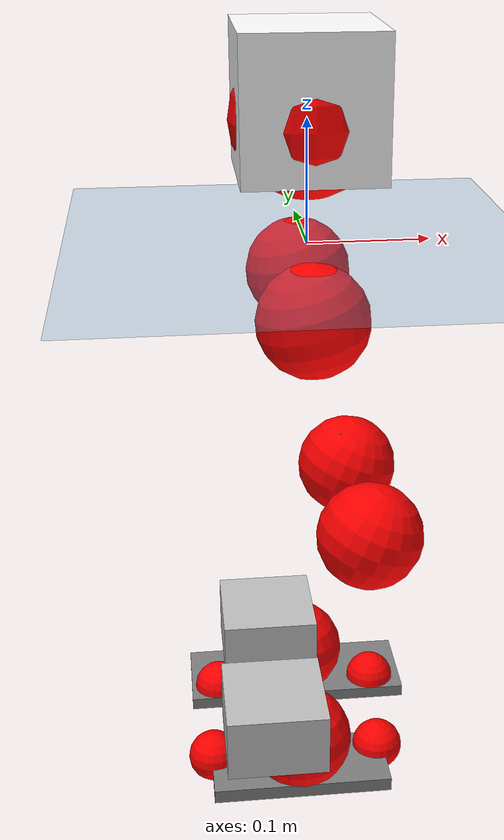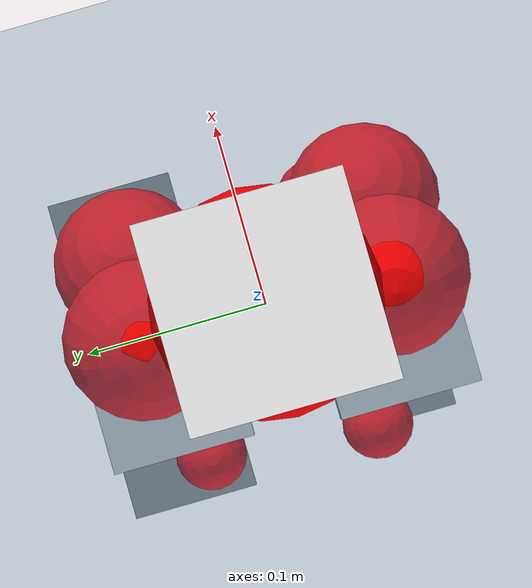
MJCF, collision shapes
<mujoco model="pi_12dof_release_v1">
  <compiler angle="radian" assetdir="assets" balanceinertia="true" inertiafromgeom="false"/>

  <option timestep="0.005" density="1.2" viscosity="2e-05"/>

  <size nkey="1"/>

  <visual>
    <quality shadowsize="8192"/>
    <map shadowclip="0.5"/>
  </visual>

  <default>
    <default class="/">
      <joint armature="0.01" damping="0.01" frictionloss="0.01"/>
      <geom contype="0" conaffinity="0" group="1" solref="-1000 -80"/>
      <site size="0.01 0.005 0.005" group="5"/>
      <general forcelimited="true" biastype="affine" gainprm="20" biasprm="0 -20 -0.5"/>
      <default class="foot">
        <geom size="0.0845 0.036 0.005" type="box" condim="6" group="4" priority="1" friction="0.9 0.2 0.2" solimp="0.015 1 0.005"/>
      </default>
      <default class="reward_collision_sphere">
        <geom group="5" rgba="1 0 0 1"/>
      </default>
    </default>
  </default>

  <asset>
    <texture type="skybox" colorspace="auto" name="//unnamed_texture_0" builtin="gradient" rgb1="0.95 0.95 0.95" rgb2="0.95 0.95 0.95" width="100" height="600"/>
    <texture type="2d" colorspace="auto" name="texplane" builtin="checker" rgb1="0.345 0.575 0.748" rgb2="0.345 0.575 0.748" markrgb="1 1 1" width="512" height="512"/>
    <material name="MatPlane" class="/" texture="texplane" texuniform="true" texrepeat="2 2" specular="0.9"/>
    <mesh name="baselink_1" class="/" file="baselink_1.STL"/>
    <mesh name="r_hip_pitch_link" class="/" file="r_hip_pitch_link.STL"/>
    <mesh name="r_hip_roll_link" class="/" file="r_hip_roll_link.STL"/>
    <mesh name="r_thigh_link" class="/" file="r_thigh_link.STL"/>
    <mesh name="r_calf_link" class="/" file="r_calf_link.STL"/>
    <mesh name="r_ankle_pitch_link" class="/" file="r_ankle_pitch_link.STL"/>
    <mesh name="r_ankle_roll_link" class="/" file="r_ankle_roll_link.STL"/>
    <mesh name="l_hip_pitch_link" class="/" file="l_hip_pitch_link.STL"/>
    <mesh name="l_hip_roll_link" class="/" file="l_hip_roll_link.STL"/>
    <mesh name="l_thigh_link" class="/" file="l_thigh_link.STL"/>
    <mesh name="l_calf_link" class="/" file="l_calf_link.STL"/>
    <mesh name="l_ankle_pitch_link" class="/" file="l_ankle_pitch_link.STL"/>
    <mesh name="l_ankle_roll_link" class="/" file="l_ankle_roll_link.STL"/>
  </asset>

  <worldbody>
    <geom name="floor" class="/" size="100 100 0.125" type="plane" group="0" material="MatPlane"/>
    <light name="toplight_shadow" class="/" pos="0 0 5" dir="0.0990148 0.0990148 -0.990148" type="directional" ambient="0.04 0.04 0.04" diffuse="0.55 0.55 0.55" specular="0.12 0.12 0.12"/>
    <light name="toplight_fill" class="/" pos="0 0 5" dir="0.0990148 0.0990148 -0.990148" type="directional" castshadow="false" ambient="0.04 0.04 0.04" diffuse="0.3 0.3 0.3" specular="0.08 0.08 0.08"/>
    <body name="trunk" pos="0.000380702 -0.000235995 0.000571205" quat="1 4.35973e-05 -4.12024e-06 -4.15314e-05">
      <inertial pos="0.00387907 -0.00372584 0.0555164" quat="0.694978 0.00912895 0.0103328 0.718899" mass="3.20346" diaginertia="0.0166041 0.00447403 0.0230673"/>
      <joint name="//unnamed_joint_0" type="free"/>
      <geom name="//unnamed_geom_1" class="/" type="mesh" density="0" rgba="1 1 1 1" mesh="baselink_1"/>
      <geom name="//unnamed_geom_2" class="/" size="0.0567966 0.0567966 0.0567966" pos="0 0 0.113196" type="box" rgba="1 1 1 1"/>
      <geom name="//unnamed_geom_3" class="reward_collision_sphere" size="0.0624762" pos="0 0 0.0990466"/>
      <site name="imu" class="/" pos="0.0113262 -0.00463237 0.0106158" size="0.0113593"/>
      <camera name="track" class="/" pos="0 -1.73932 0" quat="0.707107 0.707107 0 0" mode="trackcom"/>
      <camera name="ego_camera" class="/" pos="0.0842389 0 0.254691" quat="-0.5 -0.5 0.5 0.5"/>
      <body name="r_hip_pitch_link" pos="-0.0025614 -0.0201474 -0.0439782" quat="0.992248 0.00117287 -0.124266 0.000502007">
        <inertial pos="0.00335391 -0.0506389 -0.0015967" quat="-0.00980962 0.70704 -0.0334994 0.706312" mass="0.509172" diaginertia="0.000188318 4.6645e-05 0.000460941"/>
        <joint name="r_hip_pitch_joint" class="/" pos="0 0 0" axis="-0.00412054 -0.999777 -0.020719" range="-1.79052 1.25367" armature="0.010901" damping="0.00952357" frictionloss="0.0119464"/>
        <geom name="//unnamed_geom_4" class="/" type="mesh" density="0" rgba="0.75294 0.75294 0.75294 1" mesh="r_hip_pitch_link"/>
        <geom name="//unnamed_geom_5" class="/" size="0.000567966 0.000567966 0.000567966" type="box" rgba="0.75294 0.75294 0.75294 1"/>
        <body name="r_hip_roll_link" pos="-0.000679674 -0.0498739 0.00163057" quat="1 8.23638e-05 -4.70325e-05 1.02436e-05">
          <inertial pos="-0.00152378 -0.000579342 -0.0868804" quat="0.706052 -0.0801088 -0.0806022 0.698983" mass="0.608012" diaginertia="0.00059054 0.000140767 0.000796548"/>
          <joint name="r_hip_roll_joint" class="/" pos="0 0 0" axis="-0.999977 0.00180064 0.00655191" range="-0.123702 0.468387" armature="0.0100602" damping="0.0444636" frictionloss="0.011797"/>
          <geom name="//unnamed_geom_6" class="/" type="mesh" density="0" rgba="0.75294 0.75294 0.75294 1" mesh="r_hip_roll_link"/>
          <geom name="//unnamed_geom_7" class="/" size="0.000567966 0.000567966 0.000567966" type="box" rgba="0.75294 0.75294 0.75294 1"/>
          <geom name="//unnamed_geom_8" class="reward_collision_sphere" size="0.0454373"/>
          <body name="r_thigh_link" pos="-0.00206722 -0.000250811 -0.099297" quat="0.999999 0.000787624 0.00115725 0.000826483">
            <inertial pos="0.000561146 0.000913854 -0.0666717" quat="0.736678 0.676242 0.000284249 -0.00168104" mass="0.162588" diaginertia="0.000222709 4.85533e-05 0.000336769"/>
            <joint name="r_thigh_joint" class="/" pos="0 0 0" axis="0.00255062 0.0021462 -0.999994" range="-0.306597 0.608339" armature="0.0102993" damping="0.00815478" frictionloss="0.0110698"/>
            <geom name="//unnamed_geom_9" class="/" type="mesh" density="0" rgba="0.75294 0.75294 0.75294 1" mesh="r_thigh_link"/>
            <geom name="//unnamed_geom_10" class="/" size="0.000567966 0.000567966 0.000567966" type="box" rgba="0.75294 0.75294 0.75294 1"/>
            <body name="r_calf_link" pos="0.00167736 -0.00311121 -0.0976777" quat="0.94744 -0.000161171 0.319934 -0.000569137">
              <inertial pos="-0.000517523 0.0017397 -0.101228" quat="0.999966 -0.0033178 -0.00358441 0.00661807" mass="1.27345" diaginertia="0.00643495 0.00177379 0.000987259"/>
              <joint name="r_calf_joint" class="/" pos="0 0 0" axis="0.00551055 -0.999736 0.0222845" range="-1.6858 0.640276" armature="0.011442" damping="0.0139555" frictionloss="0.00995539"/>
              <geom name="//unnamed_geom_11" class="/" type="mesh" density="0" rgba="0.75294 0.75294 0.75294 1" mesh="r_calf_link"/>
              <geom name="//unnamed_geom_12" class="/" size="0.000567966 0.000567966 0.000567966" type="box" rgba="0.75294 0.75294 0.75294 1"/>
              <geom name="//unnamed_geom_13" class="reward_collision_sphere" size="0.0454373"/>
              <body name="r_ankle_pitch_link" pos="-0.00474306 0.000795335 -0.198065" quat="0.980074 0.000153032 -0.198629 -0.00112423">
                <inertial pos="0.00474342 0.000997448 -0.000240304" quat="0.00358359 0.7094 -0.00445011 0.704783" mass="0.238037" diaginertia="0.00053802 0.00010127 0.000657255"/>
                <joint name="r_ankle_pitch_joint" class="/" pos="0 0 0" axis="-0.00710636 -0.999975 0.000685104" range="-1.29894 0.534853" armature="0.0110533" damping="0" frictionloss="0.0101234"/>
                <geom name="//unnamed_geom_14" class="/" type="mesh" density="0" rgba="0.75294 0.75294 0.75294 1" mesh="r_ankle_pitch_link"/>
                <geom name="//unnamed_geom_15" class="/" size="0.0443013 0.0454373 0.0283983" type="box" rgba="0.75294 0.75294 0.75294 1"/>
                <body name="r_ankle_roll_link" pos="0.0806782 0.00538059 0.000633511" quat="0.999999 0.000647376 -0.00074934 0.000491756">
                  <inertial pos="-0.0286252 -0.00239651 -0.0248835" quat="0.563486 0.435226 0.437951 0.548873" mass="0.803529" diaginertia="0.00201698 0.000508142 0.00159237"/>
                  <joint name="r_ankle_roll_joint" class="/" pos="0 0 0" axis="-1 0.000336449 8.61756e-05" stiffness="0.00829831" range="-0.112242 0.105666" armature="0.0113046" damping="0.00787193" frictionloss="0.00862947"/>
                  <geom name="//unnamed_geom_16" class="/" type="mesh" density="0" rgba="0.75294 0.75294 0.75294 1" mesh="r_ankle_roll_link"/>
                  <geom name="//unnamed_geom_17" class="/" type="mesh" rgba="0.75294 0.75294 0.75294 1" mesh="r_ankle_roll_link"/>
                  <geom name="right_foot" class="foot" size="0.0793717 0.0340513 0.00625324" pos="-0.0572825 0 -0.0622579"/>
                  <geom name="//unnamed_geom_19" class="reward_collision_sphere" size="0.0454373" pos="-0.0561593 0 -0.028299"/>
                  <geom name="//unnamed_geom_20" class="reward_collision_sphere" size="0.0227186" pos="0.0168478 0.0173932 -0.0565981"/>
                  <geom name="//unnamed_geom_21" class="reward_collision_sphere" size="0.0227186" pos="-0.134782 0.0173932 -0.0565981"/>
                  <site name="right_foot" class="foot" pos="-0.0572825 0 -0.0622579" size="0.0113593"/>
                </body>
              </body>
            </body>
          </body>
        </body>
      </body>
      <body name="l_hip_pitch_link" pos="-0.00191431 0.0189695 -0.0455775" quat="0.992164 -0.00100849 -0.124937 0.000339655">
        <inertial pos="-0.000436632 0.0493863 0.00228309" quat="-0.0148987 0.695154 0.0272926 0.718188" mass="0.607702" diaginertia="0.000235282 5.21297e-05 0.00055741"/>
        <joint name="l_hip_pitch_joint" class="/" pos="0 0 0" axis="0.00671846 0.999974 0.0025375" range="-1.27805 1.81521" armature="0.0116325" damping="0.0146366" frictionloss="0.0124946"/>
        <geom name="//unnamed_geom_22" class="/" type="mesh" density="0" rgba="0.75294 0.75294 0.75294 1" mesh="l_hip_pitch_link"/>
        <geom name="//unnamed_geom_23" class="/" size="0.000567966 0.000567966 0.000567966" type="box" rgba="0.75294 0.75294 0.75294 1"/>
        <body name="l_hip_roll_link" pos="0.00143008 0.0516658 0.000400989" quat="1 0.000498624 -0.000276928 -0.000451438">
          <inertial pos="-0.00424237 0.000411242 -0.0848326" quat="0.698365 -0.0680505 -0.0711742 0.708936" mass="0.556018" diaginertia="0.000552787 0.0001306 0.000709034"/>
          <joint name="l_hip_roll_joint" class="/" pos="0 0 0" axis="-0.999967 0.00813509 0.000401078" range="-0.601878 0.188961" armature="0.0126335" damping="0.00787813" frictionloss="0.0122571"/>
          <geom name="//unnamed_geom_24" class="/" type="mesh" density="0" rgba="0.75294 0.75294 0.75294 1" mesh="l_hip_roll_link"/>
          <geom name="//unnamed_geom_25" class="/" size="0.000567966 0.000567966 0.000567966" type="box" rgba="0.75294 0.75294 0.75294 1"/>
          <geom name="//unnamed_geom_26" class="reward_collision_sphere" size="0.0454373"/>
          <body name="l_thigh_link" pos="-0.000828232 0.001283 -0.0973076" quat="1 0.000732839 0.000402502 0.000382692">
            <inertial pos="-0.0013687 -0.00378967 -0.0667319" quat="0.6752 0.737634 -0.000160565 -0.00031114" mass="0.158697" diaginertia="0.00020133 4.20205e-05 0.000283784"/>
            <joint name="l_thigh_joint" class="/" pos="0 0 0" axis="-0.0114385 0.00360366 -0.999928" range="-0.551236 0.342662" armature="0.0103973" damping="0" frictionloss="0.0116982"/>
            <geom name="//unnamed_geom_27" class="/" type="mesh" density="0" rgba="0.75294 0.75294 0.75294 1" mesh="l_thigh_link"/>
            <geom name="//unnamed_geom_28" class="/" size="0.000567966 0.000567966 0.000567966" type="box" rgba="0.75294 0.75294 0.75294 1"/>
            <body name="l_calf_link" pos="-0.00247619 -0.00085058 -0.0998786" quat="0.947517 0.00108124 0.319703 -3.3009e-05">
              <inertial pos="0.00274343 0.0043367 -0.100264" quat="0.999694 0.00960643 -0.0221091 -0.00563667" mass="1.15535" diaginertia="0.00631795 0.00171151 0.000988835"/>
              <joint name="l_calf_joint" class="/" pos="0 0 0" axis="-0.00157049 0.999966 0.00812332" stiffness="0.00502459" range="-0.599957 1.62365" armature="0.0115785" damping="0.0205041" frictionloss="0.0112739"/>
              <geom name="//unnamed_geom_29" class="/" type="mesh" density="0" rgba="0.75294 0.75294 0.75294 1" mesh="l_calf_link"/>
              <geom name="//unnamed_geom_30" class="/" size="0.000567966 0.000567966 0.000567966" type="box" rgba="0.75294 0.75294 0.75294 1"/>
              <geom name="//unnamed_geom_31" class="reward_collision_sphere" size="0.0454373"/>
              <body name="l_ankle_pitch_link" pos="-0.00144125 0.00278346 -0.193471" quat="0.980111 0.00100497 -0.198449 -0.000296519">
                <inertial pos="0.00548131 -0.00605758 0.000872562" quat="0.00103053 0.709749 -0.00282168 0.704448" mass="0.276998" diaginertia="0.00058016 0.00011788 0.000710405"/>
                <joint name="l_ankle_pitch_joint" class="/" pos="0 0 0" axis="-0.00301736 0.999843 -0.0174828" range="-0.491184 1.2891" armature="0.0111737" damping="0.0216688" frictionloss="0.00993053"/>
                <geom name="//unnamed_geom_32" class="/" type="mesh" density="0" rgba="0.75294 0.75294 0.75294 1" mesh="l_ankle_pitch_link"/>
                <geom name="//unnamed_geom_33" class="/" size="0.0443013 0.0454373 0.0283983" type="box" rgba="0.75294 0.75294 0.75294 1"/>
                <body name="l_ankle_roll_link" pos="0.0843228 0.00231642 0.00095898" quat="1 -0.000345784 0.000281317 -9.36147e-05">
                  <inertial pos="-0.0252884 -0.000799757 -0.0198454" quat="0.557144 0.448612 0.425259 0.55452" mass="0.776938" diaginertia="0.00205055 0.000489541 0.00147539"/>
                  <joint name="l_ankle_roll_joint" class="/" pos="0 0 0" axis="-0.999653 -0.0258377 0.0050317" range="-0.137469 0.263646" armature="0.011115" damping="0.0210432" frictionloss="0.0142542"/>
                  <geom name="//unnamed_geom_34" class="/" type="mesh" density="0" rgba="0.75294 0.75294 0.75294 1" mesh="l_ankle_roll_link"/>
                  <geom name="//unnamed_geom_35" class="/" type="mesh" rgba="0.75294 0.75294 0.75294 1" mesh="l_ankle_roll_link"/>
                  <geom name="left_foot" class="foot" size="0.103991 0.0400021 0.00566489" pos="-0.0572825 0 -0.0622579"/>
                  <geom name="//unnamed_geom_37" class="reward_collision_sphere" size="0.0454373" pos="-0.0561593 0 -0.028299"/>
                  <geom name="//unnamed_geom_38" class="reward_collision_sphere" size="0.0227186" pos="0.0168478 -0.0173932 -0.0565981"/>
                  <geom name="//unnamed_geom_39" class="reward_collision_sphere" size="0.0227186" pos="-0.134782 -0.0173932 -0.0565981"/>
                  <site name="left_foot" class="foot" pos="-0.0572825 0 -0.0622579" size="0.0113593"/>
                </body>
              </body>
            </body>
          </body>
        </body>
      </body>
    </body>
  </worldbody>

  <contact>
    <pair class="/" geom1="floor" geom2="right_foot" name="//unnamed_contact_1"/>
    <pair class="/" geom1="floor" geom2="left_foot" name="//unnamed_contact_0"/>
  </contact>

  <actuator>
    <general name="r_hip_pitch_joint" class="/" joint="r_hip_pitch_joint" forcerange="-24.429 24.429" gainprm="21.6544" biasprm="0 -21.6544 -0.606922"/>
    <general name="r_hip_roll_joint" class="/" joint="r_hip_roll_joint" forcerange="-23.7991 23.7991" gainprm="21.6544" biasprm="0 -21.6544 -0.606922"/>
    <general name="r_thigh_joint" class="/" joint="r_thigh_joint" forcerange="-23.5549 23.5549" gainprm="21.6544" biasprm="0 -21.6544 -0.606922"/>
    <general name="r_calf_joint" class="/" joint="r_calf_joint" forcerange="-25.8999 25.8999" gainprm="21.6544" biasprm="0 -21.6544 -0.606922"/>
    <general name="r_ankle_pitch_joint" class="/" joint="r_ankle_pitch_joint" forcerange="-23.9734 23.9734" gainprm="21.6544" biasprm="0 -21.6544 -0.606922"/>
    <general name="r_ankle_roll_joint" class="/" joint="r_ankle_roll_joint" forcerange="-21.0921 21.0921" gainprm="21.6544" biasprm="0 -21.6544 -0.606922"/>
    <general name="l_hip_pitch_joint" class="/" joint="l_hip_pitch_joint" forcerange="-23.0765 23.0765" gainprm="21.6544" biasprm="0 -21.6544 -0.606922"/>
    <general name="l_hip_roll_joint" class="/" joint="l_hip_roll_joint" forcerange="-28.3142 28.3142" gainprm="21.6544" biasprm="0 -21.6544 -0.606922"/>
    <general name="l_thigh_joint" class="/" joint="l_thigh_joint" forcerange="-26.1018 26.1018" gainprm="21.6544" biasprm="0 -21.6544 -0.606922"/>
    <general name="l_calf_joint" class="/" joint="l_calf_joint" forcerange="-21.676 21.676" gainprm="21.6544" biasprm="0 -21.6544 -0.606922"/>
    <general name="l_ankle_pitch_joint" class="/" joint="l_ankle_pitch_joint" forcerange="-25.8583 25.8583" gainprm="21.6544" biasprm="0 -21.6544 -0.606922"/>
    <general name="l_ankle_roll_joint" class="/" joint="l_ankle_roll_joint" forcerange="-22.4851 22.4851" gainprm="21.6544" biasprm="0 -21.6544 -0.606922"/>
  </actuator>

  <sensor>
    <gyro site="imu" name="imu_angular_velocity"/>
    <velocimeter site="imu" name="imu_linear_velocity"/>
    <framelinvel objtype="site" objname="left_foot" name="left_foot_global_linear_velocity"/>
    <framelinvel objtype="site" objname="right_foot" name="right_foot_global_linear_velocity"/>
  </sensor>

  <keyframe>
    <key name="home" qpos="0 0 0.291 1 0 0 0 0.4 0 0 -0.8 0.4 0 -0.4 0 0 0.8 -0.4 0"/>
  </keyframe>
</mujoco>
